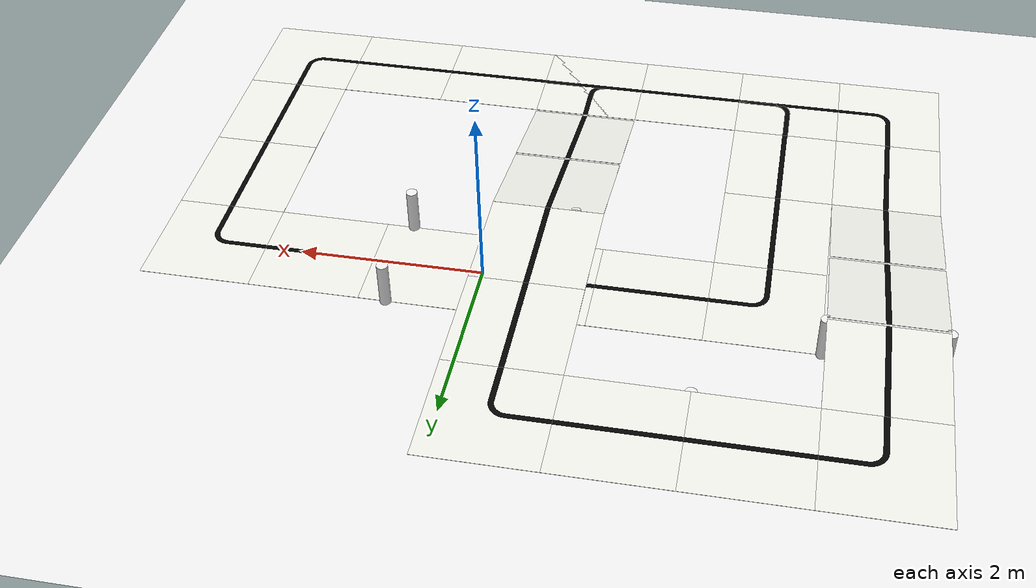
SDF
<sdf version='1.7'>
  <world name='default'>
    <!-- Iluminacao Zenital Sem Sombras (Piso Claro e Linhas Pretas de Alto Contraste) -->
    <light name='sun' type='directional'>
      <cast_shadows>0</cast_shadows>
      <pose>0 0 20 0 0 0</pose>
      <diffuse>0.95 0.95 0.95 1</diffuse>
      <specular>0.05 0.05 0.05 1</specular>
      <attenuation>
        <range>1000</range>
        <constant>0.9</constant>
        <linear>0.01</linear>
        <quadratic>0.001</quadratic>
      </attenuation>
      <direction>0 0 -1</direction>
    </light>

    <!-- Fundo Branco Total (Sky / Horizon) -->
    <scene>
      <ambient>0.95 0.95 0.95 1</ambient>
      <background>1 1 1 1</background>
      <shadows>0</shadows>
      <grid>0</grid>
    </scene>

    <!-- Chao Branco Total (Gazebo/White) para Contraste Maximo com as Linhas Pretas -->
    <model name='ground_plane'>
      <static>1</static>
      <link name='link'>
        <collision name='collision'>
          <geometry>
            <plane>
              <normal>0 0 1</normal>
              <size>200 200</size>
            </plane>
          </geometry>
          <surface>
            <contact><collide_bitmask>65535</collide_bitmask><ode/></contact>
            <friction>
              <ode><mu>100</mu><mu2>50</mu2></ode>
              <torsional><ode/></torsional>
            </friction>
            <bounce/>
          </surface>
        </collision>
        <visual name='visual'>
          <cast_shadows>0</cast_shadows>
          <geometry>
            <plane>
              <normal>0 0 1</normal>
              <size>200 200</size>
            </plane>
          </geometry>
          <material>
            <script>
              <uri>file://media/materials/scripts/gazebo.material</uri>
              <name>Gazebo/White</name>
            </script>
            <ambient>1 1 1 1</ambient>
            <diffuse>1 1 1 1</diffuse>
            <specular>0.05 0.05 0.05 1</specular>
          </material>
        </visual>
      </link>
    </model>

    <gravity>0 0 -9.8</gravity>
    <magnetic_field>6e-06 2.3e-05 -4.2e-05</magnetic_field>
    <atmosphere type='adiabatic'/>
    <physics type='ode'>
      <max_step_size>0.001</max_step_size>
      <real_time_factor>1</real_time_factor>
      <real_time_update_rate>1000</real_time_update_rate>
    </physics>
    <audio><device>none</device></audio>

    <model name='tile_reta_g1'>
      <static>1</static>
      <link name='link'>
        <visual name='visual'>
          <pose>0 0 0 1.5708 -0 0</pose>
          <geometry>
            <mesh>
              <uri>/workspace/tiles/tile-reta/meshes/tile_reta.dae</uri>
              <scale>4.0 1 4.0</scale>
            </mesh>
          </geometry>
        </visual>
        <collision name='collision'>
          <geometry>
            <box>
              <size>1.20 1.20 0.003</size>
            </box>
          </geometry>
          <surface>
            <contact><ode/></contact>
            <friction>
              <ode><mu>100</mu><mu2>50</mu2></ode>
              <torsional><ode/></torsional>
            </friction>
          </surface>
        </collision>
      </link>
      <pose>-2.4000 0.6000 0.0010 0 0.000000 0.000000</pose>
    </model>

    <model name='tile_reta_tunnel'>
      <static>1</static>
      <link name='link'>
        <visual name='visual'>
          <pose>0 0 0 1.5708 -0 0</pose>
          <geometry>
            <mesh>
              <uri>/workspace/tiles/tile-reta/meshes/tile_reta.dae</uri>
              <scale>4.0 1 4.0</scale>
            </mesh>
          </geometry>
        </visual>
        <collision name='collision'>
          <geometry>
            <box>
              <size>1.20 1.20 0.003</size>
            </box>
          </geometry>
          <surface>
            <contact><ode/></contact>
            <friction>
              <ode><mu>100</mu><mu2>50</mu2></ode>
              <torsional><ode/></torsional>
            </friction>
          </surface>
        </collision>
      </link>
      <pose>-1.2000 0.6000 0.0010 0 0.000000 0.000000</pose>
    </model>

    <model name='tile_reta_g3'>
      <static>1</static>
      <link name='link'>
        <visual name='visual'>
          <pose>0 0 0 1.5708 -0 0</pose>
          <geometry>
            <mesh>
              <uri>/workspace/tiles/tile-reta/meshes/tile_reta.dae</uri>
              <scale>4.0 1 4.0</scale>
            </mesh>
          </geometry>
        </visual>
        <collision name='collision'>
          <geometry>
            <box>
              <size>1.20 1.20 0.003</size>
            </box>
          </geometry>
          <surface>
            <contact><ode/></contact>
            <friction>
              <ode><mu>100</mu><mu2>50</mu2></ode>
              <torsional><ode/></torsional>
            </friction>
          </surface>
        </collision>
      </link>
      <pose>0.0000 0.6000 0.0010 0 0.000000 0.000000</pose>
    </model>

    <model name='tile_reta_g4'>
      <static>1</static>
      <link name='link'>
        <visual name='visual'>
          <pose>0 0 0 1.5708 -0 0</pose>
          <geometry>
            <mesh>
              <uri>/workspace/tiles/tile-reta/meshes/tile_reta.dae</uri>
              <scale>4.0 1 4.0</scale>
            </mesh>
          </geometry>
        </visual>
        <collision name='collision'>
          <geometry>
            <box>
              <size>1.20 1.20 0.003</size>
            </box>
          </geometry>
          <surface>
            <contact><ode/></contact>
            <friction>
              <ode><mu>100</mu><mu2>50</mu2></ode>
              <torsional><ode/></torsional>
            </friction>
          </surface>
        </collision>
      </link>
      <pose>1.2000 0.6000 0.0010 0 0.000000 0.000000</pose>
    </model>

    <model name='tile_curva_r1'>
      <static>1</static>
      <link name='link'>
        <visual name='visual'>
          <pose>0 0 0 1.5708 -0 0</pose>
          <geometry>
            <mesh>
              <uri>/workspace/tiles/tile-curva/meshes/tile_curva.dae</uri>
              <scale>4.0 1 4.0</scale>
            </mesh>
          </geometry>
        </visual>
        <collision name='collision'>
          <geometry>
            <box>
              <size>1.20 1.20 0.003</size>
            </box>
          </geometry>
          <surface>
            <contact><ode/></contact>
            <friction>
              <ode><mu>100</mu><mu2>50</mu2></ode>
              <torsional><ode/></torsional>
            </friction>
          </surface>
        </collision>
      </link>
      <pose>2.4000 0.6000 0.0010 0 0.000000 0.000000</pose>
    </model>

    <model name='tile_reta_r2'>
      <static>1</static>
      <link name='link'>
        <visual name='visual'>
          <pose>0 0 0 1.5708 -0 0</pose>
          <geometry>
            <mesh>
              <uri>/workspace/tiles/tile-reta/meshes/tile_reta.dae</uri>
              <scale>4.0 1 4.0</scale>
            </mesh>
          </geometry>
        </visual>
        <collision name='collision'>
          <geometry>
            <box>
              <size>1.20 1.20 0.003</size>
            </box>
          </geometry>
          <surface>
            <contact><ode/></contact>
            <friction>
              <ode><mu>100</mu><mu2>50</mu2></ode>
              <torsional><ode/></torsional>
            </friction>
          </surface>
        </collision>
      </link>
      <pose>3.6000 -0.6000 0.0010 0 0.000000 4.712400</pose>
    </model>

    <model name='tile_reta_r3'>
      <static>1</static>
      <link name='link'>
        <visual name='visual'>
          <pose>0 0 0 1.5708 -0 0</pose>
          <geometry>
            <mesh>
              <uri>/workspace/tiles/tile-reta/meshes/tile_reta.dae</uri>
              <scale>4.0 1 4.0</scale>
            </mesh>
          </geometry>
        </visual>
        <collision name='collision'>
          <geometry>
            <box>
              <size>1.20 1.20 0.003</size>
            </box>
          </geometry>
          <surface>
            <contact><ode/></contact>
            <friction>
              <ode><mu>100</mu><mu2>50</mu2></ode>
              <torsional><ode/></torsional>
            </friction>
          </surface>
        </collision>
      </link>
      <pose>3.6000 -1.8000 0.0010 0 0.000000 4.712400</pose>
    </model>

    <model name='tile_curva_r4'>
      <static>1</static>
      <link name='link'>
        <visual name='visual'>
          <pose>0 0 0 1.5708 -0 0</pose>
          <geometry>
            <mesh>
              <uri>/workspace/tiles/tile-curva/meshes/tile_curva.dae</uri>
              <scale>4.0 1 4.0</scale>
            </mesh>
          </geometry>
        </visual>
        <collision name='collision'>
          <geometry>
            <box>
              <size>1.20 1.20 0.003</size>
            </box>
          </geometry>
          <surface>
            <contact><ode/></contact>
            <friction>
              <ode><mu>100</mu><mu2>50</mu2></ode>
              <torsional><ode/></torsional>
            </friction>
          </surface>
        </collision>
      </link>
      <pose>3.6000 -3.0000 0.0010 0 0.000000 4.712400</pose>
    </model>

    <model name='tile_reta_s1'>
      <static>1</static>
      <link name='link'>
        <visual name='visual'>
          <pose>0 0 0 1.5708 -0 0</pose>
          <geometry>
            <mesh>
              <uri>/workspace/tiles/tile-reta/meshes/tile_reta.dae</uri>
              <scale>4.0 1 4.0</scale>
            </mesh>
          </geometry>
        </visual>
        <collision name='collision'>
          <geometry>
            <box>
              <size>1.20 1.20 0.003</size>
            </box>
          </geometry>
          <surface>
            <contact><ode/></contact>
            <friction>
              <ode><mu>100</mu><mu2>50</mu2></ode>
              <torsional><ode/></torsional>
            </friction>
          </surface>
        </collision>
      </link>
      <pose>2.4000 -4.2000 0.0010 0 0.000000 3.141600</pose>
    </model>

    <model name='tile_reta_s2'>
      <static>1</static>
      <link name='link'>
        <visual name='visual'>
          <pose>0 0 0 1.5708 -0 0</pose>
          <geometry>
            <mesh>
              <uri>/workspace/tiles/tile-reta/meshes/tile_reta.dae</uri>
              <scale>4.0 1 4.0</scale>
            </mesh>
          </geometry>
        </visual>
        <collision name='collision'>
          <geometry>
            <box>
              <size>1.20 1.20 0.003</size>
            </box>
          </geometry>
          <surface>
            <contact><ode/></contact>
            <friction>
              <ode><mu>100</mu><mu2>50</mu2></ode>
              <torsional><ode/></torsional>
            </friction>
          </surface>
        </collision>
      </link>
      <pose>1.2000 -4.2000 0.0010 0 0.000000 3.141600</pose>
    </model>

    <model name='tile_reta_s3'>
      <static>1</static>
      <link name='link'>
        <visual name='visual'>
          <pose>0 0 0 1.5708 -0 0</pose>
          <geometry>
            <mesh>
              <uri>/workspace/tiles/tile-reta/meshes/tile_reta.dae</uri>
              <scale>4.0 1 4.0</scale>
            </mesh>
          </geometry>
        </visual>
        <collision name='collision'>
          <geometry>
            <box>
              <size>1.20 1.20 0.003</size>
            </box>
          </geometry>
          <surface>
            <contact><ode/></contact>
            <friction>
              <ode><mu>100</mu><mu2>50</mu2></ode>
              <torsional><ode/></torsional>
            </friction>
          </surface>
        </collision>
      </link>
      <pose>0.0000 -4.2000 0.0010 0 0.000000 3.141600</pose>
    </model>

    <model name='tile_reta_s4'>
      <static>1</static>
      <link name='link'>
        <visual name='visual'>
          <pose>0 0 0 1.5708 -0 0</pose>
          <geometry>
            <mesh>
              <uri>/workspace/tiles/tile-reta/meshes/tile_reta.dae</uri>
              <scale>4.0 1 4.0</scale>
            </mesh>
          </geometry>
        </visual>
        <collision name='collision'>
          <geometry>
            <box>
              <size>1.20 1.20 0.003</size>
            </box>
          </geometry>
          <surface>
            <contact><ode/></contact>
            <friction>
              <ode><mu>100</mu><mu2>50</mu2></ode>
              <torsional><ode/></torsional>
            </friction>
          </surface>
        </collision>
      </link>
      <pose>-1.2000 -4.2000 0.0010 0 0.000000 3.141600</pose>
    </model>

    <model name='tile_reta_s5'>
      <static>1</static>
      <link name='link'>
        <visual name='visual'>
          <pose>0 0 0 1.5708 -0 0</pose>
          <geometry>
            <mesh>
              <uri>/workspace/tiles/tile-reta/meshes/tile_reta.dae</uri>
              <scale>4.0 1 4.0</scale>
            </mesh>
          </geometry>
        </visual>
        <collision name='collision'>
          <geometry>
            <box>
              <size>1.20 1.20 0.003</size>
            </box>
          </geometry>
          <surface>
            <contact><ode/></contact>
            <friction>
              <ode><mu>100</mu><mu2>50</mu2></ode>
              <torsional><ode/></torsional>
            </friction>
          </surface>
        </collision>
      </link>
      <pose>-2.4000 -4.2000 0.0010 0 0.000000 3.141600</pose>
    </model>

    <model name='tile_curva_w1'>
      <static>1</static>
      <link name='link'>
        <visual name='visual'>
          <pose>0 0 0 1.5708 -0 0</pose>
          <geometry>
            <mesh>
              <uri>/workspace/tiles/tile-curva/meshes/tile_curva.dae</uri>
              <scale>4.0 1 4.0</scale>
            </mesh>
          </geometry>
        </visual>
        <collision name='collision'>
          <geometry>
            <box>
              <size>1.20 1.20 0.003</size>
            </box>
          </geometry>
          <surface>
            <contact><ode/></contact>
            <friction>
              <ode><mu>100</mu><mu2>50</mu2></ode>
              <torsional><ode/></torsional>
            </friction>
          </surface>
        </collision>
      </link>
      <pose>-3.6000 -4.2000 0.0010 0 0.000000 3.141600</pose>
    </model>

    <model name='tile_reta_w2'>
      <static>1</static>
      <link name='link'>
        <visual name='visual'>
          <pose>0 0 0 1.5708 -0 0</pose>
          <geometry>
            <mesh>
              <uri>/workspace/tiles/tile-reta/meshes/tile_reta.dae</uri>
              <scale>4.0 1 4.0</scale>
            </mesh>
          </geometry>
        </visual>
        <collision name='collision'>
          <geometry>
            <box>
              <size>1.20 1.20 0.003</size>
            </box>
          </geometry>
          <surface>
            <contact><ode/></contact>
            <friction>
              <ode><mu>100</mu><mu2>50</mu2></ode>
              <torsional><ode/></torsional>
            </friction>
          </surface>
        </collision>
      </link>
      <pose>-4.8000 -3.0000 0.0010 0 0.000000 1.570800</pose>
    </model>

    <model name='tile_rampa_subida_1'>
      <static>1</static>
      <link name='link'>
        <visual name='visual'>
          <pose>0 0 0 1.5708 -0 0</pose>
          <geometry>
            <mesh>
              <uri>/workspace/tiles/tile-reta/meshes/tile_reta.dae</uri>
              <scale>4.0 1 4.0</scale>
            </mesh>
          </geometry>
        </visual>
        <collision name='collision'>
          <geometry>
            <box>
              <size>1.20 1.20 0.003</size>
            </box>
          </geometry>
          <surface>
            <contact><ode/></contact>
            <friction>
              <ode><mu>100</mu><mu2>50</mu2></ode>
              <torsional><ode/></torsional>
            </friction>
          </surface>
        </collision>
      </link>
      <pose>-4.8000 -1.8000 0.0010 0 -0.209871 1.570800</pose>
    </model>

    <model name='tile_rampa_subida_2'>
      <static>1</static>
      <link name='link'>
        <visual name='visual'>
          <pose>0 0 0 1.5708 -0 0</pose>
          <geometry>
            <mesh>
              <uri>/workspace/tiles/tile-reta/meshes/tile_reta.dae</uri>
              <scale>4.0 1 4.0</scale>
            </mesh>
          </geometry>
        </visual>
        <collision name='collision'>
          <geometry>
            <box>
              <size>1.20 1.20 0.003</size>
            </box>
          </geometry>
          <surface>
            <contact><ode/></contact>
            <friction>
              <ode><mu>100</mu><mu2>50</mu2></ode>
              <torsional><ode/></torsional>
            </friction>
          </surface>
        </collision>
      </link>
      <pose>-4.8000 -0.6000 0.2510 0 -0.209871 1.570800</pose>
    </model>

    <model name='tile_reta_topo_w'>
      <static>1</static>
      <link name='link'>
        <visual name='visual'>
          <pose>0 0 0 1.5708 -0 0</pose>
          <geometry>
            <mesh>
              <uri>/workspace/tiles/tile-reta/meshes/tile_reta.dae</uri>
              <scale>4.0 1 4.0</scale>
            </mesh>
          </geometry>
        </visual>
        <collision name='collision'>
          <geometry>
            <box>
              <size>1.20 1.20 0.003</size>
            </box>
          </geometry>
          <surface>
            <contact><ode/></contact>
            <friction>
              <ode><mu>100</mu><mu2>50</mu2></ode>
              <torsional><ode/></torsional>
            </friction>
          </surface>
        </collision>
      </link>
      <pose>-4.8000 0.6000 0.5010 0 0.000000 1.570800</pose>
    </model>

    <model name='tile_curva_topo_nw'>
      <static>1</static>
      <link name='link'>
        <visual name='visual'>
          <pose>0 0 0 1.5708 -0 0</pose>
          <geometry>
            <mesh>
              <uri>/workspace/tiles/tile-curva/meshes/tile_curva.dae</uri>
              <scale>4.0 1 4.0</scale>
            </mesh>
          </geometry>
        </visual>
        <collision name='collision'>
          <geometry>
            <box>
              <size>1.20 1.20 0.003</size>
            </box>
          </geometry>
          <surface>
            <contact><ode/></contact>
            <friction>
              <ode><mu>100</mu><mu2>50</mu2></ode>
              <torsional><ode/></torsional>
            </friction>
          </surface>
        </collision>
      </link>
      <pose>-4.8000 1.8000 0.5010 0 0.000000 1.570800</pose>
    </model>

    <model name='tile_reta_topo_n1'>
      <static>1</static>
      <link name='link'>
        <visual name='visual'>
          <pose>0 0 0 1.5708 -0 0</pose>
          <geometry>
            <mesh>
              <uri>/workspace/tiles/tile-reta/meshes/tile_reta.dae</uri>
              <scale>4.0 1 4.0</scale>
            </mesh>
          </geometry>
        </visual>
        <collision name='collision'>
          <geometry>
            <box>
              <size>1.20 1.20 0.003</size>
            </box>
          </geometry>
          <surface>
            <contact><ode/></contact>
            <friction>
              <ode><mu>100</mu><mu2>50</mu2></ode>
              <torsional><ode/></torsional>
            </friction>
          </surface>
        </collision>
      </link>
      <pose>-3.6000 3.0000 0.5010 0 0.000000 0.000000</pose>
    </model>

    <model name='tile_reta_topo_n2'>
      <static>1</static>
      <link name='link'>
        <visual name='visual'>
          <pose>0 0 0 1.5708 -0 0</pose>
          <geometry>
            <mesh>
              <uri>/workspace/tiles/tile-reta/meshes/tile_reta.dae</uri>
              <scale>4.0 1 4.0</scale>
            </mesh>
          </geometry>
        </visual>
        <collision name='collision'>
          <geometry>
            <box>
              <size>1.20 1.20 0.003</size>
            </box>
          </geometry>
          <surface>
            <contact><ode/></contact>
            <friction>
              <ode><mu>100</mu><mu2>50</mu2></ode>
              <torsional><ode/></torsional>
            </friction>
          </surface>
        </collision>
      </link>
      <pose>-2.4000 3.0000 0.5010 0 0.000000 0.000000</pose>
    </model>

    <model name='tile_curva_topo_ne'>
      <static>1</static>
      <link name='link'>
        <visual name='visual'>
          <pose>0 0 0 1.5708 -0 0</pose>
          <geometry>
            <mesh>
              <uri>/workspace/tiles/tile-curva/meshes/tile_curva.dae</uri>
              <scale>4.0 1 4.0</scale>
            </mesh>
          </geometry>
        </visual>
        <collision name='collision'>
          <geometry>
            <box>
              <size>1.20 1.20 0.003</size>
            </box>
          </geometry>
          <surface>
            <contact><ode/></contact>
            <friction>
              <ode><mu>100</mu><mu2>50</mu2></ode>
              <torsional><ode/></torsional>
            </friction>
          </surface>
        </collision>
      </link>
      <pose>-1.2000 3.0000 0.5010 0 0.000000 0.000000</pose>
    </model>

    <model name='tile_reta_bridge_app'>
      <static>1</static>
      <link name='link'>
        <visual name='visual'>
          <pose>0 0 0 1.5708 -0 0</pose>
          <geometry>
            <mesh>
              <uri>/workspace/tiles/tile-reta/meshes/tile_reta.dae</uri>
              <scale>4.0 1 4.0</scale>
            </mesh>
          </geometry>
        </visual>
        <collision name='collision'>
          <geometry>
            <box>
              <size>1.20 1.20 0.003</size>
            </box>
          </geometry>
          <surface>
            <contact><ode/></contact>
            <friction>
              <ode><mu>100</mu><mu2>50</mu2></ode>
              <torsional><ode/></torsional>
            </friction>
          </surface>
        </collision>
      </link>
      <pose>-0.0000 1.8000 0.5010 0 0.000000 4.712400</pose>
    </model>

    <model name='tile_reta_viaduto'>
      <static>1</static>
      <link name='link'>
        <visual name='visual'>
          <pose>0 0 0 1.5708 -0 0</pose>
          <geometry>
            <mesh>
              <uri>/workspace/tiles/tile-reta/meshes/tile_reta.dae</uri>
              <scale>4.0 1 4.0</scale>
            </mesh>
          </geometry>
        </visual>
        <collision name='collision'>
          <geometry>
            <box>
              <size>1.20 1.20 0.003</size>
            </box>
          </geometry>
          <surface>
            <contact><ode/></contact>
            <friction>
              <ode><mu>100</mu><mu2>50</mu2></ode>
              <torsional><ode/></torsional>
            </friction>
          </surface>
        </collision>
      </link>
      <pose>-0.0000 0.6000 0.5010 0 0.000000 4.712400</pose>
    </model>

    <model name='tile_rampa_descida_1'>
      <static>1</static>
      <link name='link'>
        <visual name='visual'>
          <pose>0 0 0 1.5708 -0 0</pose>
          <geometry>
            <mesh>
              <uri>/workspace/tiles/tile-reta/meshes/tile_reta.dae</uri>
              <scale>4.0 1 4.0</scale>
            </mesh>
          </geometry>
        </visual>
        <collision name='collision'>
          <geometry>
            <box>
              <size>1.20 1.20 0.003</size>
            </box>
          </geometry>
          <surface>
            <contact><ode/></contact>
            <friction>
              <ode><mu>100</mu><mu2>50</mu2></ode>
              <torsional><ode/></torsional>
            </friction>
          </surface>
        </collision>
      </link>
      <pose>-0.0000 -0.6000 0.5010 0 0.209871 4.712400</pose>
    </model>

    <model name='tile_rampa_descida_2'>
      <static>1</static>
      <link name='link'>
        <visual name='visual'>
          <pose>0 0 0 1.5708 -0 0</pose>
          <geometry>
            <mesh>
              <uri>/workspace/tiles/tile-reta/meshes/tile_reta.dae</uri>
              <scale>4.0 1 4.0</scale>
            </mesh>
          </geometry>
        </visual>
        <collision name='collision'>
          <geometry>
            <box>
              <size>1.20 1.20 0.003</size>
            </box>
          </geometry>
          <surface>
            <contact><ode/></contact>
            <friction>
              <ode><mu>100</mu><mu2>50</mu2></ode>
              <torsional><ode/></torsional>
            </friction>
          </surface>
        </collision>
      </link>
      <pose>-0.0000 -1.8000 0.2510 0 0.209871 4.712400</pose>
    </model>

    <model name='tile_curva_ret_1'>
      <static>1</static>
      <link name='link'>
        <visual name='visual'>
          <pose>0 0 0 1.5708 -0 0</pose>
          <geometry>
            <mesh>
              <uri>/workspace/tiles/tile-curva/meshes/tile_curva.dae</uri>
              <scale>4.0 1 4.0</scale>
            </mesh>
          </geometry>
        </visual>
        <collision name='collision'>
          <geometry>
            <box>
              <size>1.20 1.20 0.003</size>
            </box>
          </geometry>
          <surface>
            <contact><ode/></contact>
            <friction>
              <ode><mu>100</mu><mu2>50</mu2></ode>
              <torsional><ode/></torsional>
            </friction>
          </surface>
        </collision>
      </link>
      <pose>-0.0000 -3.0000 0.0010 0 0.000000 4.712400</pose>
    </model>

    <model name='tile_reta_ret_2'>
      <static>1</static>
      <link name='link'>
        <visual name='visual'>
          <pose>0 0 0 1.5708 -0 0</pose>
          <geometry>
            <mesh>
              <uri>/workspace/tiles/tile-reta/meshes/tile_reta.dae</uri>
              <scale>4.0 1 4.0</scale>
            </mesh>
          </geometry>
        </visual>
        <collision name='collision'>
          <geometry>
            <box>
              <size>1.20 1.20 0.003</size>
            </box>
          </geometry>
          <surface>
            <contact><ode/></contact>
            <friction>
              <ode><mu>100</mu><mu2>50</mu2></ode>
              <torsional><ode/></torsional>
            </friction>
          </surface>
        </collision>
      </link>
      <pose>-1.2000 -4.2000 0.0010 0 0.000000 3.141600</pose>
    </model>

    <model name='tile_curva_ret_3'>
      <static>1</static>
      <link name='link'>
        <visual name='visual'>
          <pose>0 0 0 1.5708 -0 0</pose>
          <geometry>
            <mesh>
              <uri>/workspace/tiles/tile-curva/meshes/tile_curva.dae</uri>
              <scale>4.0 1 4.0</scale>
            </mesh>
          </geometry>
        </visual>
        <collision name='collision'>
          <geometry>
            <box>
              <size>1.20 1.20 0.003</size>
            </box>
          </geometry>
          <surface>
            <contact><ode/></contact>
            <friction>
              <ode><mu>100</mu><mu2>50</mu2></ode>
              <torsional><ode/></torsional>
            </friction>
          </surface>
        </collision>
      </link>
      <pose>-2.4000 -4.2000 0.0010 0 0.000000 3.141600</pose>
    </model>

    <model name='tile_reta_ret_4'>
      <static>1</static>
      <link name='link'>
        <visual name='visual'>
          <pose>0 0 0 1.5708 -0 0</pose>
          <geometry>
            <mesh>
              <uri>/workspace/tiles/tile-reta/meshes/tile_reta.dae</uri>
              <scale>4.0 1 4.0</scale>
            </mesh>
          </geometry>
        </visual>
        <collision name='collision'>
          <geometry>
            <box>
              <size>1.20 1.20 0.003</size>
            </box>
          </geometry>
          <surface>
            <contact><ode/></contact>
            <friction>
              <ode><mu>100</mu><mu2>50</mu2></ode>
              <torsional><ode/></torsional>
            </friction>
          </surface>
        </collision>
      </link>
      <pose>-3.6000 -3.0000 0.0010 0 0.000000 1.570800</pose>
    </model>

    <model name='tile_reta_ret_5'>
      <static>1</static>
      <link name='link'>
        <visual name='visual'>
          <pose>0 0 0 1.5708 -0 0</pose>
          <geometry>
            <mesh>
              <uri>/workspace/tiles/tile-reta/meshes/tile_reta.dae</uri>
              <scale>4.0 1 4.0</scale>
            </mesh>
          </geometry>
        </visual>
        <collision name='collision'>
          <geometry>
            <box>
              <size>1.20 1.20 0.003</size>
            </box>
          </geometry>
          <surface>
            <contact><ode/></contact>
            <friction>
              <ode><mu>100</mu><mu2>50</mu2></ode>
              <torsional><ode/></torsional>
            </friction>
          </surface>
        </collision>
      </link>
      <pose>-3.6000 -1.8000 0.0010 0 0.000000 1.570800</pose>
    </model>

    <model name='tile_curva_ret_6'>
      <static>1</static>
      <link name='link'>
        <visual name='visual'>
          <pose>0 0 0 1.5708 -0 0</pose>
          <geometry>
            <mesh>
              <uri>/workspace/tiles/tile-curva/meshes/tile_curva.dae</uri>
              <scale>4.0 1 4.0</scale>
            </mesh>
          </geometry>
        </visual>
        <collision name='collision'>
          <geometry>
            <box>
              <size>1.20 1.20 0.003</size>
            </box>
          </geometry>
          <surface>
            <contact><ode/></contact>
            <friction>
              <ode><mu>100</mu><mu2>50</mu2></ode>
              <torsional><ode/></torsional>
            </friction>
          </surface>
        </collision>
      </link>
      <pose>-3.6000 -0.6000 0.0010 0 0.000000 1.570800</pose>
    </model>

    <model name='pillar_nw'>
      <static>1</static>
      <link name='link'>
        <visual name='visual'>
          <geometry>
            <cylinder>
              <radius>0.06</radius>
              <length>0.50</length>
            </cylinder>
          </geometry>
          <material>
            <script>
              <uri>file://media/materials/scripts/gazebo.material</uri>
              <name>Gazebo/White</name>
            </script>
          </material>
        </visual>
        <collision name='collision'>
          <geometry>
            <cylinder>
              <radius>0.06</radius>
              <length>0.50</length>
            </cylinder>
          </geometry>
        </collision>
      </link>
      <pose>-0.9000 0.6000 0.2500 0 0 0</pose>
    </model>

    <model name='pillar_ne'>
      <static>1</static>
      <link name='link'>
        <visual name='visual'>
          <geometry>
            <cylinder>
              <radius>0.06</radius>
              <length>0.50</length>
            </cylinder>
          </geometry>
          <material>
            <script>
              <uri>file://media/materials/scripts/gazebo.material</uri>
              <name>Gazebo/White</name>
            </script>
          </material>
        </visual>
        <collision name='collision'>
          <geometry>
            <cylinder>
              <radius>0.06</radius>
              <length>0.50</length>
            </cylinder>
          </geometry>
        </collision>
      </link>
      <pose>0.9000 0.6000 0.2500 0 0 0</pose>
    </model>

    <model name='pillar_sw'>
      <static>1</static>
      <link name='link'>
        <visual name='visual'>
          <geometry>
            <cylinder>
              <radius>0.06</radius>
              <length>0.50</length>
            </cylinder>
          </geometry>
          <material>
            <script>
              <uri>file://media/materials/scripts/gazebo.material</uri>
              <name>Gazebo/White</name>
            </script>
          </material>
        </visual>
        <collision name='collision'>
          <geometry>
            <cylinder>
              <radius>0.06</radius>
              <length>0.50</length>
            </cylinder>
          </geometry>
        </collision>
      </link>
      <pose>-0.9000 -0.6000 0.2500 0 0 0</pose>
    </model>

    <model name='pillar_se'>
      <static>1</static>
      <link name='link'>
        <visual name='visual'>
          <geometry>
            <cylinder>
              <radius>0.06</radius>
              <length>0.50</length>
            </cylinder>
          </geometry>
          <material>
            <script>
              <uri>file://media/materials/scripts/gazebo.material</uri>
              <name>Gazebo/White</name>
            </script>
          </material>
        </visual>
        <collision name='collision'>
          <geometry>
            <cylinder>
              <radius>0.06</radius>
              <length>0.50</length>
            </cylinder>
          </geometry>
        </collision>
      </link>
      <pose>0.9000 -0.6000 0.2500 0 0 0</pose>
    </model>

    <model name='pillar_n_top'>
      <static>1</static>
      <link name='link'>
        <visual name='visual'>
          <geometry>
            <cylinder>
              <radius>0.06</radius>
              <length>0.50</length>
            </cylinder>
          </geometry>
          <material>
            <script>
              <uri>file://media/materials/scripts/gazebo.material</uri>
              <name>Gazebo/White</name>
            </script>
          </material>
        </visual>
        <collision name='collision'>
          <geometry>
            <cylinder>
              <radius>0.06</radius>
              <length>0.50</length>
            </cylinder>
          </geometry>
        </collision>
      </link>
      <pose>-2.4000 1.8000 0.2500 0 0 0</pose>
    </model>

    <model name='pillar_w_top'>
      <static>1</static>
      <link name='link'>
        <visual name='visual'>
          <geometry>
            <cylinder>
              <radius>0.06</radius>
              <length>0.50</length>
            </cylinder>
          </geometry>
          <material>
            <script>
              <uri>file://media/materials/scripts/gazebo.material</uri>
              <name>Gazebo/White</name>
            </script>
          </material>
        </visual>
        <collision name='collision'>
          <geometry>
            <cylinder>
              <radius>0.06</radius>
              <length>0.50</length>
            </cylinder>
          </geometry>
        </collision>
      </link>
      <pose>-4.8000 0.6000 0.2500 0 0 0</pose>
    </model>

    <model name='pillar_e_top'>
      <static>1</static>
      <link name='link'>
        <visual name='visual'>
          <geometry>
            <cylinder>
              <radius>0.06</radius>
              <length>0.50</length>
            </cylinder>
          </geometry>
          <material>
            <script>
              <uri>file://media/materials/scripts/gazebo.material</uri>
              <name>Gazebo/White</name>
            </script>
          </material>
        </visual>
        <collision name='collision'>
          <geometry>
            <cylinder>
              <radius>0.06</radius>
              <length>0.50</length>
            </cylinder>
          </geometry>
        </collision>
      </link>
      <pose>-3.6000 0.6000 0.2500 0 0 0</pose>
    </model>

    <gui fullscreen='0'>
      <camera name='user_camera'>
        <pose>2.5 -6.0 6.5 0 0.65 2.15</pose>
        <view_controller>orbit</view_controller>
        <projection_type>perspective</projection_type>
      </camera>
    </gui>
  </world>
</sdf>
